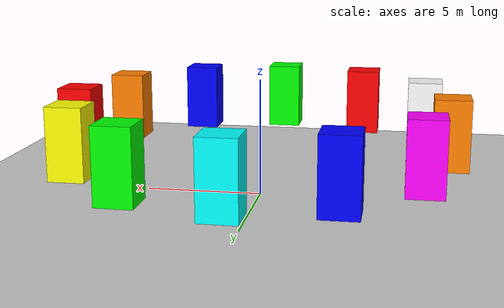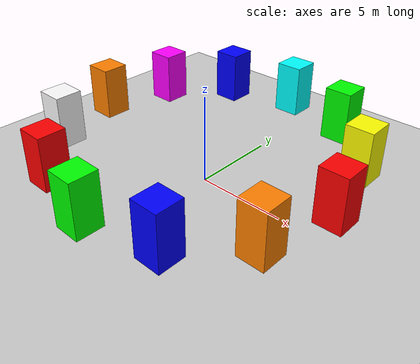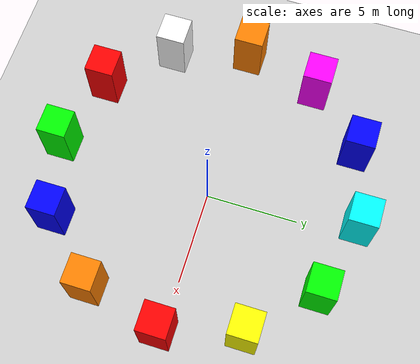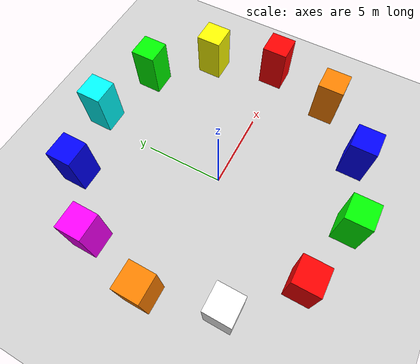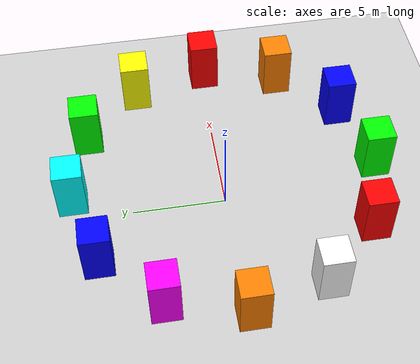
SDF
<?xml version="1.0" encoding="UTF-8"?>
<sdf version="1.9">
  <world name="default">
    <physics type="ode">
      <max_step_size>0.004</max_step_size>
      <real_time_factor>1.0</real_time_factor>
      <real_time_update_rate>250</real_time_update_rate>
    </physics>
    <gravity>0 0 -9.8</gravity>
    <magnetic_field>6e-06 2.3e-05 -4.2e-05</magnetic_field>
    <atmosphere type="adiabatic"/>
    <scene>
      <grid>false</grid>
      <ambient>0.4 0.4 0.4 1</ambient>
      <background>0.7 0.7 0.7 1</background>
      <shadows>true</shadows>
    </scene>
    <model name="ground_plane">
      <static>true</static>
      <link name="link">
        <collision name="collision">
          <geometry>
            <plane>
              <normal>0 0 1</normal>
              <size>1 1</size>
            </plane>
          </geometry>
          <surface>
            <friction>
              <ode/>
            </friction>
            <bounce/>
            <contact/>
          </surface>
        </collision>
        <visual name="visual">
          <geometry>
            <plane>
              <normal>0 0 1</normal>
              <size>500 500</size>
            </plane>
          </geometry>
          <material>
            <ambient>0.8 0.8 0.8 1</ambient>
            <diffuse>0.8 0.8 0.8 1</diffuse>
            <specular>0.8 0.8 0.8 1</specular>
          </material>
        </visual>
        <pose>0 0 0 0 -0 0</pose>
        <inertial>
          <pose>0 0 0 0 -0 0</pose>
          <mass>1</mass>
          <inertia>
            <ixx>1</ixx>
            <ixy>0</ixy>
            <ixz>0</ixz>
            <iyy>1</iyy>
            <iyz>0</iyz>
            <izz>1</izz>
          </inertia>
        </inertial>
        <enable_wind>false</enable_wind>
      </link>
      <pose>0 0 0 0 -0 0</pose>
      <self_collide>false</self_collide>
    </model>
    <light name="sunUTC" type="directional">
      <pose>0 0 500 0 -0 0</pose>
      <cast_shadows>true</cast_shadows>
      <intensity>1</intensity>
      <direction>0.001 0.625 -0.78</direction>
      <diffuse>0.904 0.904 0.904 1</diffuse>
      <specular>0.271 0.271 0.271 1</specular>
      <attenuation>
        <range>2000</range>
        <linear>0</linear>
        <constant>1</constant>
        <quadratic>0</quadratic>
      </attenuation>
      <spot>
        <inner_angle>0</inner_angle>
        <outer_angle>0</outer_angle>
        <falloff>0</falloff>
      </spot>
    </light>
    <!-- VO Landmark pillars: 12 coloured boxes in a ring at r=8m, z=3m -->
    <!-- Added for Visual Odometry feature tracking (Step 5) -->
    <model name="landmark_00"><static>true</static><link name="link">
      <visual name="v"><geometry><box><size>1.5 1.5 3.0</size></box></geometry>
      <material><ambient>1 0 0 1</ambient><diffuse>1 0 0 1</diffuse><specular>0.3 0 0 1</specular></material></visual>
    </link><pose>8.0 0.0 3.0 0 0 0</pose></model>

    <model name="landmark_01"><static>true</static><link name="link">
      <visual name="v"><geometry><box><size>1.5 1.5 3.0</size></box></geometry>
      <material><ambient>1 1 0 1</ambient><diffuse>1 1 0 1</diffuse><specular>0.3 0.3 0 1</specular></material></visual>
    </link><pose>6.93 4.0 3.0 0 0 0</pose></model>

    <model name="landmark_02"><static>true</static><link name="link">
      <visual name="v"><geometry><box><size>1.5 1.5 3.0</size></box></geometry>
      <material><ambient>0 1 0 1</ambient><diffuse>0 1 0 1</diffuse><specular>0 0.3 0 1</specular></material></visual>
    </link><pose>4.0 6.93 3.0 0 0 0</pose></model>

    <model name="landmark_03"><static>true</static><link name="link">
      <visual name="v"><geometry><box><size>1.5 1.5 3.0</size></box></geometry>
      <material><ambient>0 1 1 1</ambient><diffuse>0 1 1 1</diffuse><specular>0 0.3 0.3 1</specular></material></visual>
    </link><pose>0.0 8.0 3.0 0 0 0</pose></model>

    <model name="landmark_04"><static>true</static><link name="link">
      <visual name="v"><geometry><box><size>1.5 1.5 3.0</size></box></geometry>
      <material><ambient>0 0 1 1</ambient><diffuse>0 0 1 1</diffuse><specular>0 0 0.3 1</specular></material></visual>
    </link><pose>-4.0 6.93 3.0 0 0 0</pose></model>

    <model name="landmark_05"><static>true</static><link name="link">
      <visual name="v"><geometry><box><size>1.5 1.5 3.0</size></box></geometry>
      <material><ambient>1 0 1 1</ambient><diffuse>1 0 1 1</diffuse><specular>0.3 0 0.3 1</specular></material></visual>
    </link><pose>-6.93 4.0 3.0 0 0 0</pose></model>

    <model name="landmark_06"><static>true</static><link name="link">
      <visual name="v"><geometry><box><size>1.5 1.5 3.0</size></box></geometry>
      <material><ambient>1 0.5 0 1</ambient><diffuse>1 0.5 0 1</diffuse><specular>0.3 0.1 0 1</specular></material></visual>
    </link><pose>-8.0 0.0 3.0 0 0 0</pose></model>

    <model name="landmark_07"><static>true</static><link name="link">
      <visual name="v"><geometry><box><size>1.5 1.5 3.0</size></box></geometry>
      <material><ambient>1 1 1 1</ambient><diffuse>1 1 1 1</diffuse><specular>0.5 0.5 0.5 1</specular></material></visual>
    </link><pose>-6.93 -4.0 3.0 0 0 0</pose></model>

    <model name="landmark_08"><static>true</static><link name="link">
      <visual name="v"><geometry><box><size>1.5 1.5 3.0</size></box></geometry>
      <material><ambient>1 0 0 1</ambient><diffuse>1 0 0 1</diffuse><specular>0.3 0 0 1</specular></material></visual>
    </link><pose>-4.0 -6.93 3.0 0 0 0</pose></model>

    <model name="landmark_09"><static>true</static><link name="link">
      <visual name="v"><geometry><box><size>1.5 1.5 3.0</size></box></geometry>
      <material><ambient>0 1 0 1</ambient><diffuse>0 1 0 1</diffuse><specular>0 0.3 0 1</specular></material></visual>
    </link><pose>0.0 -8.0 3.0 0 0 0</pose></model>

    <model name="landmark_10"><static>true</static><link name="link">
      <visual name="v"><geometry><box><size>1.5 1.5 3.0</size></box></geometry>
      <material><ambient>0 0 1 1</ambient><diffuse>0 0 1 1</diffuse><specular>0 0 0.3 1</specular></material></visual>
    </link><pose>4.0 -6.93 3.0 0 0 0</pose></model>

    <model name="landmark_11"><static>true</static><link name="link">
      <visual name="v"><geometry><box><size>1.5 1.5 3.0</size></box></geometry>
      <material><ambient>1 0.5 0 1</ambient><diffuse>1 0.5 0 1</diffuse><specular>0.3 0.1 0 1</specular></material></visual>
    </link><pose>6.93 -4.0 3.0 0 0 0</pose></model>
    <!-- end VO landmarks -->

    <spherical_coordinates>
      <surface_model>EARTH_WGS84</surface_model>
      <world_frame_orientation>ENU</world_frame_orientation>
      <latitude_deg>47.397971057728974</latitude_deg>
      <longitude_deg> 8.546163739800146</longitude_deg>
      <elevation>0</elevation>
    </spherical_coordinates>
  </world>
</sdf>
